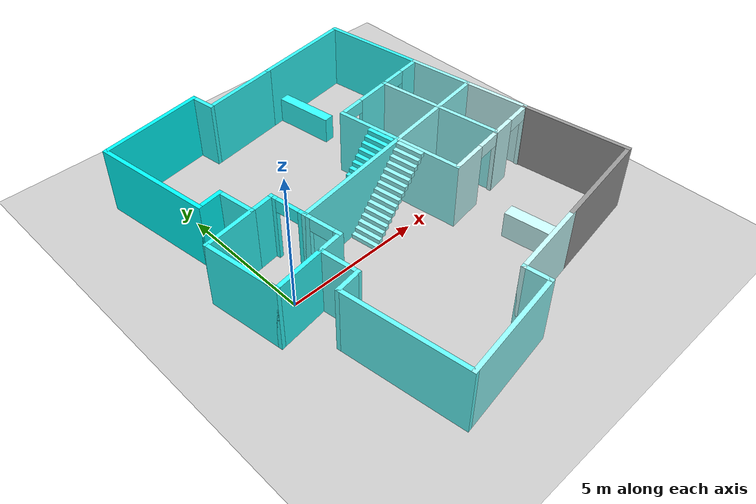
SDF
<sdf version="1.6">
 <world name="default">
  <light name="sun" type="directional">
   <pose>0 0 10 0 -0 0</pose>
   <diffuse>0.8 0.8 0.8 1</diffuse>
   <specular>0.2 0.2 0.2 1</specular>
   <attenuation>
    <range>1000</range>
    <constant>0.9</constant>
    <linear>0.01</linear>
    <quadratic>0.001</quadratic>
   </attenuation>
   <direction>-0.5 0.1 -0.9</direction>
  </light>
  <model name="ground_plane">
   <static>1</static>
   <link name="link">
    <collision name="collision">
     <geometry><plane><normal>0 0 1</normal><size>100 100</size></plane></geometry>
     <surface>
      <contact><collide_bitmask>65535</collide_bitmask></contact>
      <friction><ode><mu>100</mu><mu2>50</mu2></ode></friction>
     </surface>
    </collision>
    <visual name="visual">
     <cast_shadows>0</cast_shadows>
     <geometry><plane><normal>0 0 1</normal><size>100 100</size></plane></geometry>
     <material>
      <script><uri>file://media/materials/scripts/gazebo.material</uri><name>Gazebo/Grey</name></script>
     </material>
    </visual>
   </link>
  </model>
  <gravity>0 0 -9.8</gravity>
  <magnetic_field>6e-06 2.3e-05 -4.2e-05</magnetic_field>
  <atmosphere type="adiabatic"/>
  <physics name="default_physics" default="0" type="ode">
   <max_step_size>0.001</max_step_size>
   <real_time_factor>1</real_time_factor>
   <real_time_update_rate>1000</real_time_update_rate>
  </physics>
  <scene><ambient>0.4 0.4 0.4 1</ambient><background>0.7 0.7 0.7 1</background><shadows>1</shadows></scene>
  <audio><device>default</device></audio>
  <spherical_coordinates>
   <surface_model>EARTH_WGS84</surface_model>
   <latitude_deg>0</latitude_deg>
   <longitude_deg>0</longitude_deg>
   <elevation>0</elevation>
   <heading_deg>0</heading_deg>
  </spherical_coordinates>
  <model name="thermal_two_family">
   <pose>4.24756 1.15233 0 0 0 -1.43406</pose>
   <link name="Stairs_1">
    <visual name="Stairs_1_Visual_0">
     <pose>-0.58975 -0.927848 0.083333 0 -0 -3.14159</pose>
     <geometry><box><size>1 0.167208 0.166667</size></box></geometry>
     <material>
      <script><uri>file://media/materials/scripts/gazebo.material</uri><name>Gazebo/Grey</name></script>
      <ambient>0.196078 1 1 1</ambient>
     </material>
     <meta><layer>0</layer></meta>
    </visual>
    <collision name="Stairs_1_Collision_0">
     <geometry><box><size>1 0.167208 0.166667</size></box></geometry>
     <pose>-0.58975 -0.927848 0.083333 0 -0 -3.14159</pose>
    </collision>
    <visual name="Stairs_1_Visual_1">
     <pose>-0.58975 -0.76064 0.25 0 -0 -3.14159</pose>
     <geometry><box><size>1 0.167208 0.166667</size></box></geometry>
     <material>
      <script><uri>file://media/materials/scripts/gazebo.material</uri><name>Gazebo/Grey</name></script>
      <ambient>0.196078 1 1 1</ambient>
     </material>
     <meta><layer>0</layer></meta>
    </visual>
    <collision name="Stairs_1_Collision_1">
     <geometry><box><size>1 0.167208 0.166667</size></box></geometry>
     <pose>-0.58975 -0.76064 0.25 0 -0 -3.14159</pose>
    </collision>
    <visual name="Stairs_1_Visual_2">
     <pose>-0.58975 -0.593431 0.416667 0 -0 -3.14159</pose>
     <geometry><box><size>1 0.167208 0.166667</size></box></geometry>
     <material>
      <script><uri>file://media/materials/scripts/gazebo.material</uri><name>Gazebo/Grey</name></script>
      <ambient>0.196078 1 1 1</ambient>
     </material>
     <meta><layer>0</layer></meta>
    </visual>
    <collision name="Stairs_1_Collision_2">
     <geometry><box><size>1 0.167208 0.166667</size></box></geometry>
     <pose>-0.58975 -0.593431 0.416667 0 -0 -3.14159</pose>
    </collision>
    <visual name="Stairs_1_Visual_3">
     <pose>-0.58975 -0.426223 0.583333 0 -0 -3.14159</pose>
     <geometry><box><size>1 0.167208 0.166667</size></box></geometry>
     <material>
      <script><uri>file://media/materials/scripts/gazebo.material</uri><name>Gazebo/Grey</name></script>
      <ambient>0.196078 1 1 1</ambient>
     </material>
     <meta><layer>0</layer></meta>
    </visual>
    <collision name="Stairs_1_Collision_3">
     <geometry><box><size>1 0.167208 0.166667</size></box></geometry>
     <pose>-0.58975 -0.426223 0.583333 0 -0 -3.14159</pose>
    </collision>
    <visual name="Stairs_1_Visual_4">
     <pose>-0.58975 -0.259015 0.75 0 -0 -3.14159</pose>
     <geometry><box><size>1 0.167208 0.166667</size></box></geometry>
     <material>
      <script><uri>file://media/materials/scripts/gazebo.material</uri><name>Gazebo/Grey</name></script>
      <ambient>0.196078 1 1 1</ambient>
     </material>
     <meta><layer>0</layer></meta>
    </visual>
    <collision name="Stairs_1_Collision_4">
     <geometry><box><size>1 0.167208 0.166667</size></box></geometry>
     <pose>-0.58975 -0.259015 0.75 0 -0 -3.14159</pose>
    </collision>
    <visual name="Stairs_1_Visual_5">
     <pose>-0.58975 -0.091806 0.916667 0 -0 -3.14159</pose>
     <geometry><box><size>1 0.167208 0.166667</size></box></geometry>
     <material>
      <script><uri>file://media/materials/scripts/gazebo.material</uri><name>Gazebo/Grey</name></script>
      <ambient>0.196078 1 1 1</ambient>
     </material>
     <meta><layer>0</layer></meta>
    </visual>
    <collision name="Stairs_1_Collision_5">
     <geometry><box><size>1 0.167208 0.166667</size></box></geometry>
     <pose>-0.58975 -0.091806 0.916667 0 -0 -3.14159</pose>
    </collision>
    <visual name="Stairs_1_Visual_6">
     <pose>-0.58975 0.075402 1.08333 0 -0 -3.14159</pose>
     <geometry><box><size>1 0.167208 0.166667</size></box></geometry>
     <material>
      <script><uri>file://media/materials/scripts/gazebo.material</uri><name>Gazebo/Grey</name></script>
      <ambient>0.196078 1 1 1</ambient>
     </material>
     <meta><layer>0</layer></meta>
    </visual>
    <collision name="Stairs_1_Collision_6">
     <geometry><box><size>1 0.167208 0.166667</size></box></geometry>
     <pose>-0.58975 0.075402 1.08333 0 -0 -3.14159</pose>
    </collision>
    <visual name="Stairs_1_Visual_7">
     <pose>-0.58975 0.24261 1.25 0 -0 -3.14159</pose>
     <geometry><box><size>1 0.167208 0.166667</size></box></geometry>
     <material>
      <script><uri>file://media/materials/scripts/gazebo.material</uri><name>Gazebo/Grey</name></script>
      <ambient>0.196078 1 1 1</ambient>
     </material>
     <meta><layer>0</layer></meta>
    </visual>
    <collision name="Stairs_1_Collision_7">
     <geometry><box><size>1 0.167208 0.166667</size></box></geometry>
     <pose>-0.58975 0.24261 1.25 0 -0 -3.14159</pose>
    </collision>
    <visual name="Stairs_1_Visual_8">
     <pose>-0.58975 0.409819 1.41667 0 -0 -3.14159</pose>
     <geometry><box><size>1 0.167208 0.166667</size></box></geometry>
     <material>
      <script><uri>file://media/materials/scripts/gazebo.material</uri><name>Gazebo/Grey</name></script>
      <ambient>0.196078 1 1 1</ambient>
     </material>
     <meta><layer>0</layer></meta>
    </visual>
    <collision name="Stairs_1_Collision_8">
     <geometry><box><size>1 0.167208 0.166667</size></box></geometry>
     <pose>-0.58975 0.409819 1.41667 0 -0 -3.14159</pose>
    </collision>
    <visual name="Stairs_1_Visual_9">
     <pose>-0.58975 0.577027 1.58333 0 -0 -3.14159</pose>
     <geometry><box><size>1 0.167208 0.166667</size></box></geometry>
     <material>
      <script><uri>file://media/materials/scripts/gazebo.material</uri><name>Gazebo/Grey</name></script>
      <ambient>0.196078 1 1 1</ambient>
     </material>
     <meta><layer>0</layer></meta>
    </visual>
    <collision name="Stairs_1_Collision_9">
     <geometry><box><size>1 0.167208 0.166667</size></box></geometry>
     <pose>-0.58975 0.577027 1.58333 0 -0 -3.14159</pose>
    </collision>
    <visual name="Stairs_1_Visual_10">
     <pose>-0.58975 0.744235 1.75 0 -0 -3.14159</pose>
     <geometry><box><size>1 0.167208 0.166667</size></box></geometry>
     <material>
      <script><uri>file://media/materials/scripts/gazebo.material</uri><name>Gazebo/Grey</name></script>
      <ambient>0.196078 1 1 1</ambient>
     </material>
     <meta><layer>0</layer></meta>
    </visual>
    <collision name="Stairs_1_Collision_10">
     <geometry><box><size>1 0.167208 0.166667</size></box></geometry>
     <pose>-0.58975 0.744235 1.75 0 -0 -3.14159</pose>
    </collision>
    <visual name="Stairs_1_Visual_11">
     <pose>-0.58975 0.911444 1.91667 0 -0 -3.14159</pose>
     <geometry><box><size>1 0.167208 0.166667</size></box></geometry>
     <material>
      <script><uri>file://media/materials/scripts/gazebo.material</uri><name>Gazebo/Grey</name></script>
      <ambient>0.196078 1 1 1</ambient>
     </material>
     <meta><layer>0</layer></meta>
    </visual>
    <collision name="Stairs_1_Collision_11">
     <geometry><box><size>1 0.167208 0.166667</size></box></geometry>
     <pose>-0.58975 0.911444 1.91667 0 -0 -3.14159</pose>
    </collision>
    <visual name="Stairs_1_Visual_12">
     <pose>-0.58975 1.07865 2.08333 0 -0 -3.14159</pose>
     <geometry><box><size>1 0.167208 0.166667</size></box></geometry>
     <material>
      <script><uri>file://media/materials/scripts/gazebo.material</uri><name>Gazebo/Grey</name></script>
      <ambient>0.196078 1 1 1</ambient>
     </material>
     <meta><layer>0</layer></meta>
    </visual>
    <collision name="Stairs_1_Collision_12">
     <geometry><box><size>1 0.167208 0.166667</size></box></geometry>
     <pose>-0.58975 1.07865 2.08333 0 -0 -3.14159</pose>
    </collision>
    <visual name="Stairs_1_Visual_13">
     <pose>-0.58975 1.24586 2.25 0 -0 -3.14159</pose>
     <geometry><box><size>1 0.167208 0.166667</size></box></geometry>
     <material>
      <script><uri>file://media/materials/scripts/gazebo.material</uri><name>Gazebo/Grey</name></script>
      <ambient>0.196078 1 1 1</ambient>
     </material>
     <meta><layer>0</layer></meta>
    </visual>
    <collision name="Stairs_1_Collision_13">
     <geometry><box><size>1 0.167208 0.166667</size></box></geometry>
     <pose>-0.58975 1.24586 2.25 0 -0 -3.14159</pose>
    </collision>
    <visual name="Stairs_1_Visual_14">
     <pose>-0.58975 1.41307 2.41667 0 -0 -3.14159</pose>
     <geometry><box><size>1 0.167208 0.166667</size></box></geometry>
     <material>
      <script><uri>file://media/materials/scripts/gazebo.material</uri><name>Gazebo/Grey</name></script>
      <ambient>0.196078 1 1 1</ambient>
     </material>
     <meta><layer>0</layer></meta>
    </visual>
    <collision name="Stairs_1_Collision_14">
     <geometry><box><size>1 0.167208 0.166667</size></box></geometry>
     <pose>-0.58975 1.41307 2.41667 0 -0 -3.14159</pose>
    </collision>
   </link>
   <link name="Stairs_2">
    <visual name="Stairs_2_Visual_0">
     <pose>0.593884 -0.927407 0.083333 0 -0 -3.14159</pose>
     <geometry><box><size>1 0.16809 0.166667</size></box></geometry>
     <material>
      <script><uri>file://media/materials/scripts/gazebo.material</uri><name>Gazebo/Grey</name></script>
      <ambient>0.588235 1 1 1</ambient>
     </material>
     <meta><layer>0</layer></meta>
    </visual>
    <collision name="Stairs_2_Collision_0">
     <geometry><box><size>1 0.16809 0.166667</size></box></geometry>
     <pose>0.593884 -0.927407 0.083333 0 -0 -3.14159</pose>
    </collision>
    <visual name="Stairs_2_Visual_1">
     <pose>0.593884 -0.759317 0.25 0 -0 -3.14159</pose>
     <geometry><box><size>1 0.16809 0.166667</size></box></geometry>
     <material>
      <script><uri>file://media/materials/scripts/gazebo.material</uri><name>Gazebo/Grey</name></script>
      <ambient>0.588235 1 1 1</ambient>
     </material>
     <meta><layer>0</layer></meta>
    </visual>
    <collision name="Stairs_2_Collision_1">
     <geometry><box><size>1 0.16809 0.166667</size></box></geometry>
     <pose>0.593884 -0.759317 0.25 0 -0 -3.14159</pose>
    </collision>
    <visual name="Stairs_2_Visual_2">
     <pose>0.593884 -0.591227 0.416667 0 -0 -3.14159</pose>
     <geometry><box><size>1 0.16809 0.166667</size></box></geometry>
     <material>
      <script><uri>file://media/materials/scripts/gazebo.material</uri><name>Gazebo/Grey</name></script>
      <ambient>0.588235 1 1 1</ambient>
     </material>
     <meta><layer>0</layer></meta>
    </visual>
    <collision name="Stairs_2_Collision_2">
     <geometry><box><size>1 0.16809 0.166667</size></box></geometry>
     <pose>0.593884 -0.591227 0.416667 0 -0 -3.14159</pose>
    </collision>
    <visual name="Stairs_2_Visual_3">
     <pose>0.593884 -0.423137 0.583333 0 -0 -3.14159</pose>
     <geometry><box><size>1 0.16809 0.166667</size></box></geometry>
     <material>
      <script><uri>file://media/materials/scripts/gazebo.material</uri><name>Gazebo/Grey</name></script>
      <ambient>0.588235 1 1 1</ambient>
     </material>
     <meta><layer>0</layer></meta>
    </visual>
    <collision name="Stairs_2_Collision_3">
     <geometry><box><size>1 0.16809 0.166667</size></box></geometry>
     <pose>0.593884 -0.423137 0.583333 0 -0 -3.14159</pose>
    </collision>
    <visual name="Stairs_2_Visual_4">
     <pose>0.593884 -0.255047 0.75 0 -0 -3.14159</pose>
     <geometry><box><size>1 0.16809 0.166667</size></box></geometry>
     <material>
      <script><uri>file://media/materials/scripts/gazebo.material</uri><name>Gazebo/Grey</name></script>
      <ambient>0.588235 1 1 1</ambient>
     </material>
     <meta><layer>0</layer></meta>
    </visual>
    <collision name="Stairs_2_Collision_4">
     <geometry><box><size>1 0.16809 0.166667</size></box></geometry>
     <pose>0.593884 -0.255047 0.75 0 -0 -3.14159</pose>
    </collision>
    <visual name="Stairs_2_Visual_5">
     <pose>0.593884 -0.086957 0.916667 0 -0 -3.14159</pose>
     <geometry><box><size>1 0.16809 0.166667</size></box></geometry>
     <material>
      <script><uri>file://media/materials/scripts/gazebo.material</uri><name>Gazebo/Grey</name></script>
      <ambient>0.588235 1 1 1</ambient>
     </material>
     <meta><layer>0</layer></meta>
    </visual>
    <collision name="Stairs_2_Collision_5">
     <geometry><box><size>1 0.16809 0.166667</size></box></geometry>
     <pose>0.593884 -0.086957 0.916667 0 -0 -3.14159</pose>
    </collision>
    <visual name="Stairs_2_Visual_6">
     <pose>0.593884 0.081133 1.08333 0 -0 -3.14159</pose>
     <geometry><box><size>1 0.16809 0.166667</size></box></geometry>
     <material>
      <script><uri>file://media/materials/scripts/gazebo.material</uri><name>Gazebo/Grey</name></script>
      <ambient>0.588235 1 1 1</ambient>
     </material>
     <meta><layer>0</layer></meta>
    </visual>
    <collision name="Stairs_2_Collision_6">
     <geometry><box><size>1 0.16809 0.166667</size></box></geometry>
     <pose>0.593884 0.081133 1.08333 0 -0 -3.14159</pose>
    </collision>
    <visual name="Stairs_2_Visual_7">
     <pose>0.593884 0.249223 1.25 0 -0 -3.14159</pose>
     <geometry><box><size>1 0.16809 0.166667</size></box></geometry>
     <material>
      <script><uri>file://media/materials/scripts/gazebo.material</uri><name>Gazebo/Grey</name></script>
      <ambient>0.588235 1 1 1</ambient>
     </material>
     <meta><layer>0</layer></meta>
    </visual>
    <collision name="Stairs_2_Collision_7">
     <geometry><box><size>1 0.16809 0.166667</size></box></geometry>
     <pose>0.593884 0.249223 1.25 0 -0 -3.14159</pose>
    </collision>
    <visual name="Stairs_2_Visual_8">
     <pose>0.593884 0.417313 1.41667 0 -0 -3.14159</pose>
     <geometry><box><size>1 0.16809 0.166667</size></box></geometry>
     <material>
      <script><uri>file://media/materials/scripts/gazebo.material</uri><name>Gazebo/Grey</name></script>
      <ambient>0.588235 1 1 1</ambient>
     </material>
     <meta><layer>0</layer></meta>
    </visual>
    <collision name="Stairs_2_Collision_8">
     <geometry><box><size>1 0.16809 0.166667</size></box></geometry>
     <pose>0.593884 0.417313 1.41667 0 -0 -3.14159</pose>
    </collision>
    <visual name="Stairs_2_Visual_9">
     <pose>0.593884 0.585403 1.58333 0 -0 -3.14159</pose>
     <geometry><box><size>1 0.16809 0.166667</size></box></geometry>
     <material>
      <script><uri>file://media/materials/scripts/gazebo.material</uri><name>Gazebo/Grey</name></script>
      <ambient>0.588235 1 1 1</ambient>
     </material>
     <meta><layer>0</layer></meta>
    </visual>
    <collision name="Stairs_2_Collision_9">
     <geometry><box><size>1 0.16809 0.166667</size></box></geometry>
     <pose>0.593884 0.585403 1.58333 0 -0 -3.14159</pose>
    </collision>
    <visual name="Stairs_2_Visual_10">
     <pose>0.593884 0.753493 1.75 0 -0 -3.14159</pose>
     <geometry><box><size>1 0.16809 0.166667</size></box></geometry>
     <material>
      <script><uri>file://media/materials/scripts/gazebo.material</uri><name>Gazebo/Grey</name></script>
      <ambient>0.588235 1 1 1</ambient>
     </material>
     <meta><layer>0</layer></meta>
    </visual>
    <collision name="Stairs_2_Collision_10">
     <geometry><box><size>1 0.16809 0.166667</size></box></geometry>
     <pose>0.593884 0.753493 1.75 0 -0 -3.14159</pose>
    </collision>
    <visual name="Stairs_2_Visual_11">
     <pose>0.593884 0.921583 1.91667 0 -0 -3.14159</pose>
     <geometry><box><size>1 0.16809 0.166667</size></box></geometry>
     <material>
      <script><uri>file://media/materials/scripts/gazebo.material</uri><name>Gazebo/Grey</name></script>
      <ambient>0.588235 1 1 1</ambient>
     </material>
     <meta><layer>0</layer></meta>
    </visual>
    <collision name="Stairs_2_Collision_11">
     <geometry><box><size>1 0.16809 0.166667</size></box></geometry>
     <pose>0.593884 0.921583 1.91667 0 -0 -3.14159</pose>
    </collision>
    <visual name="Stairs_2_Visual_12">
     <pose>0.593884 1.08967 2.08333 0 -0 -3.14159</pose>
     <geometry><box><size>1 0.16809 0.166667</size></box></geometry>
     <material>
      <script><uri>file://media/materials/scripts/gazebo.material</uri><name>Gazebo/Grey</name></script>
      <ambient>0.588235 1 1 1</ambient>
     </material>
     <meta><layer>0</layer></meta>
    </visual>
    <collision name="Stairs_2_Collision_12">
     <geometry><box><size>1 0.16809 0.166667</size></box></geometry>
     <pose>0.593884 1.08967 2.08333 0 -0 -3.14159</pose>
    </collision>
    <visual name="Stairs_2_Visual_13">
     <pose>0.593884 1.25776 2.25 0 -0 -3.14159</pose>
     <geometry><box><size>1 0.16809 0.166667</size></box></geometry>
     <material>
      <script><uri>file://media/materials/scripts/gazebo.material</uri><name>Gazebo/Grey</name></script>
      <ambient>0.588235 1 1 1</ambient>
     </material>
     <meta><layer>0</layer></meta>
    </visual>
    <collision name="Stairs_2_Collision_13">
     <geometry><box><size>1 0.16809 0.166667</size></box></geometry>
     <pose>0.593884 1.25776 2.25 0 -0 -3.14159</pose>
    </collision>
    <visual name="Stairs_2_Visual_14">
     <pose>0.593884 1.42585 2.41667 0 -0 -3.14159</pose>
     <geometry><box><size>1 0.16809 0.166667</size></box></geometry>
     <material>
      <script><uri>file://media/materials/scripts/gazebo.material</uri><name>Gazebo/Grey</name></script>
      <ambient>0.588235 1 1 1</ambient>
     </material>
     <meta><layer>0</layer></meta>
    </visual>
    <collision name="Stairs_2_Collision_14">
     <geometry><box><size>1 0.16809 0.166667</size></box></geometry>
     <pose>0.593884 1.42585 2.41667 0 -0 -3.14159</pose>
    </collision>
   </link>
   <link name="Wall_10">
    <collision name="Wall_10_Collision">
     <geometry><box><size>4 0.15 2.5</size></box></geometry>
     <pose>0 0 1.25 0 -0 0</pose>
    </collision>
    <visual name="Wall_10_Visual">
     <pose>0 0 1.25 0 -0 0</pose>
     <geometry><box><size>4 0.15 2.5</size></box></geometry>
     <material>
      <script><uri>file://media/materials/scripts/gazebo.material</uri><name>Gazebo/Grey</name></script>
      <ambient>1 1 1 1</ambient>
     </material>
     <meta><layer>0</layer></meta>
    </visual>
    <pose>4.275 5.775 0 0 -0 0</pose>
   </link>
   <link name="Wall_12">
    <collision name="Wall_12_Collision">
     <geometry><box><size>4 0.15 2.5</size></box></geometry>
     <pose>0 0 1.25 0 -0 0</pose>
    </collision>
    <visual name="Wall_12_Visual">
     <pose>0 0 1.25 0 -0 0</pose>
     <geometry><box><size>4 0.15 2.5</size></box></geometry>
     <material>
      <script><uri>file://media/materials/scripts/gazebo.material</uri><name>Gazebo/Grey</name></script>
      <ambient>1 1 1 1</ambient>
     </material>
     <meta><layer>0</layer></meta>
    </visual>
    <pose>6.2 3.85 0 0 -0 -1.5708</pose>
   </link>
   <link name="Wall_14">
    <collision name="Wall_14_Collision">
     <geometry><box><size>2 0.15 2.5</size></box></geometry>
     <pose>0 0 1.25 0 -0 0</pose>
    </collision>
    <visual name="Wall_14_Visual">
     <pose>0 0 1.25 0 -0 0</pose>
     <geometry><box><size>2 0.15 2.5</size></box></geometry>
     <material>
      <script><uri>file://media/materials/scripts/gazebo.material</uri><name>Gazebo/Grey</name></script>
      <ambient>0.588235 1 1 1</ambient>
     </material>
     <meta><layer>0</layer></meta>
    </visual>
    <pose>-0 4.85 0 0 -0 -1.5708</pose>
   </link>
   <link name="Wall_15">
    <collision name="Wall_15_Collision">
     <geometry><box><size>2.5 0.15 2.5</size></box></geometry>
     <pose>0 0 1.25 0 -0 0</pose>
    </collision>
    <visual name="Wall_15_Visual">
     <pose>0 0 1.25 0 -0 0</pose>
     <geometry><box><size>2.5 0.15 2.5</size></box></geometry>
     <material>
      <script><uri>file://media/materials/scripts/gazebo.material</uri><name>Gazebo/Grey</name></script>
      <ambient>0.588235 1 1 1</ambient>
     </material>
     <meta><layer>0</layer></meta>
    </visual>
    <pose>1.175 3.925 0 0 -0 0</pose>
   </link>
   <link name="Wall_16">
    <pose>2.35 4.85 0 0 -0 1.5708</pose>
    <visual name="Wall_16_Visual_0">
     <pose>-0.541074 0 1.25 0 -0 0</pose>
     <geometry><box><size>0.917852 0.15 2.5</size></box></geometry>
     <material>
      <script><uri>file://media/materials/scripts/gazebo.material</uri><name>Gazebo/Grey</name></script>
      <ambient>0.784314 1 1 1</ambient>
     </material>
     <meta><layer>0</layer></meta>
    </visual>
    <collision name="Wall_16_Collision_0">
     <geometry><box><size>0.917852 0.15 2.5</size></box></geometry>
     <pose>-0.541074 0 1.25 0 -0 0</pose>
    </collision>
    <visual name="Wall_16_Visual_1">
     <pose>0.908926 0 1.25 0 -0 0</pose>
     <geometry><box><size>0.182148 0.15 2.5</size></box></geometry>
     <material>
      <script><uri>file://media/materials/scripts/gazebo.material</uri><name>Gazebo/Grey</name></script>
      <ambient>0.784314 1 1 1</ambient>
     </material>
     <meta><layer>0</layer></meta>
    </visual>
    <collision name="Wall_16_Collision_1">
     <geometry><box><size>0.182148 0.15 2.5</size></box></geometry>
     <pose>0.908926 0 1.25 0 -0 0</pose>
    </collision>
    <visual name="Wall_16_Visual_2">
     <pose>0.367852 0 2.25 0 -0 0</pose>
     <geometry><box><size>0.9 0.15 0.5</size></box></geometry>
     <material>
      <script><uri>file://media/materials/scripts/gazebo.material</uri><name>Gazebo/Grey</name></script>
      <ambient>0.784314 1 1 1</ambient>
     </material>
     <meta><layer>0</layer></meta>
    </visual>
    <collision name="Wall_16_Collision_2">
     <geometry><box><size>0.9 0.15 0.5</size></box></geometry>
     <pose>0.367852 0 2.25 0 -0 0</pose>
    </collision>
   </link>
   <link name="Wall_18">
    <collision name="Wall_18_Collision">
     <geometry><box><size>2.5 0.15 2.5</size></box></geometry>
     <pose>0 0 1.25 0 -0 0</pose>
    </collision>
    <visual name="Wall_18_Visual">
     <pose>0 0 1.25 0 -0 0</pose>
     <geometry><box><size>2.5 0.15 2.5</size></box></geometry>
     <material>
      <script><uri>file://media/materials/scripts/gazebo.material</uri><name>Gazebo/Grey</name></script>
      <ambient>0.588235 1 1 1</ambient>
     </material>
     <meta><layer>0</layer></meta>
    </visual>
    <pose>-0 2.75 0 0 -0 -1.5708</pose>
   </link>
   <link name="Wall_19">
    <collision name="Wall_19_Collision">
     <geometry><box><size>2.5 0.15 2.5</size></box></geometry>
     <pose>0 0 1.25 0 -0 0</pose>
    </collision>
    <visual name="Wall_19_Visual">
     <pose>0 0 1.25 0 -0 0</pose>
     <geometry><box><size>2.5 0.15 2.5</size></box></geometry>
     <material>
      <script><uri>file://media/materials/scripts/gazebo.material</uri><name>Gazebo/Grey</name></script>
      <ambient>0.588235 1 1 1</ambient>
     </material>
     <meta><layer>0</layer></meta>
    </visual>
    <pose>1.175 1.575 0 0 -0 0</pose>
   </link>
   <link name="Wall_20">
    <pose>2.35 2.75 0 0 -0 1.5708</pose>
    <visual name="Wall_20_Visual_0">
     <pose>-0.541824 0 1.25 0 -0 0</pose>
     <geometry><box><size>1.41635 0.15 2.5</size></box></geometry>
     <material>
      <script><uri>file://media/materials/scripts/gazebo.material</uri><name>Gazebo/Grey</name></script>
      <ambient>0.784314 1 1 1</ambient>
     </material>
     <meta><layer>0</layer></meta>
    </visual>
    <collision name="Wall_20_Collision_0">
     <geometry><box><size>1.41635 0.15 2.5</size></box></geometry>
     <pose>-0.541824 0 1.25 0 -0 0</pose>
    </collision>
    <visual name="Wall_20_Visual_1">
     <pose>1.15818 0 1.25 0 -0 0</pose>
     <geometry><box><size>0.183648 0.15 2.5</size></box></geometry>
     <material>
      <script><uri>file://media/materials/scripts/gazebo.material</uri><name>Gazebo/Grey</name></script>
      <ambient>0.784314 1 1 1</ambient>
     </material>
     <meta><layer>0</layer></meta>
    </visual>
    <collision name="Wall_20_Collision_1">
     <geometry><box><size>0.183648 0.15 2.5</size></box></geometry>
     <pose>1.15818 0 1.25 0 -0 0</pose>
    </collision>
    <visual name="Wall_20_Visual_2">
     <pose>0.616352 0 2.25 0 -0 0</pose>
     <geometry><box><size>0.9 0.15 0.5</size></box></geometry>
     <material>
      <script><uri>file://media/materials/scripts/gazebo.material</uri><name>Gazebo/Grey</name></script>
      <ambient>0.784314 1 1 1</ambient>
     </material>
     <meta><layer>0</layer></meta>
    </visual>
    <collision name="Wall_20_Collision_2">
     <geometry><box><size>0.9 0.15 0.5</size></box></geometry>
     <pose>0.616352 0 2.25 0 -0 0</pose>
    </collision>
   </link>
   <link name="Wall_22">
    <collision name="Wall_22_Collision">
     <geometry><box><size>3 0.15 2.5</size></box></geometry>
     <pose>0 0 1.25 0 -0 0</pose>
    </collision>
    <visual name="Wall_22_Visual">
     <pose>0 0 1.25 0 -0 0</pose>
     <geometry><box><size>3 0.15 2.5</size></box></geometry>
     <material>
      <script><uri>file://media/materials/scripts/gazebo.material</uri><name>Gazebo/Grey</name></script>
      <ambient>0.784314 1 1 1</ambient>
     </material>
     <meta><layer>0</layer></meta>
    </visual>
    <pose>6.2 0.5 0 0 -0 -1.5708</pose>
   </link>
   <link name="Wall_24">
    <collision name="Wall_24_Collision">
     <geometry><box><size>1 0.15 2.5</size></box></geometry>
     <pose>0 0 1.25 0 -0 0</pose>
    </collision>
    <visual name="Wall_24_Visual">
     <pose>0 0 1.25 0 -0 0</pose>
     <geometry><box><size>1 0.15 2.5</size></box></geometry>
     <material>
      <script><uri>file://media/materials/scripts/gazebo.material</uri><name>Gazebo/Grey</name></script>
      <ambient>0.588235 1 1 1</ambient>
     </material>
     <meta><layer>0</layer></meta>
    </visual>
    <pose>6.625 -0.925 0 0 -0 0</pose>
   </link>
   <link name="Wall_32">
    <collision name="Wall_32_Collision">
     <geometry><box><size>2.5 0.15 2.5</size></box></geometry>
     <pose>0 0 1.25 0 -0 0</pose>
    </collision>
    <visual name="Wall_32_Visual">
     <pose>0 0 1.25 0 -0 0</pose>
     <geometry><box><size>2.5 0.15 2.5</size></box></geometry>
     <material>
      <script><uri>file://media/materials/scripts/gazebo.material</uri><name>Gazebo/Grey</name></script>
      <ambient>0.588235 1 1 1</ambient>
     </material>
     <meta><layer>0</layer></meta>
    </visual>
    <pose>-1.175 5.775 0 0 -0 3.14159</pose>
   </link>
   <link name="Wall_33">
    <collision name="Wall_33_Collision">
     <geometry><box><size>4 0.15 2.5</size></box></geometry>
     <pose>0 0 1.25 0 -0 0</pose>
    </collision>
    <visual name="Wall_33_Visual">
     <pose>0 0 1.25 0 -0 0</pose>
     <geometry><box><size>4 0.15 2.5</size></box></geometry>
     <material>
      <script><uri>file://media/materials/scripts/gazebo.material</uri><name>Gazebo/Grey</name></script>
      <ambient>0.196078 1 1 1</ambient>
     </material>
     <meta><layer>0</layer></meta>
    </visual>
    <pose>-4.275 5.775 0 0 -0 3.14159</pose>
   </link>
   <link name="Wall_34">
    <collision name="Wall_34_Collision">
     <geometry><box><size>4 0.15 2.5</size></box></geometry>
     <pose>0 0 1.25 0 -0 0</pose>
    </collision>
    <visual name="Wall_34_Visual">
     <pose>0 0 1.25 0 -0 0</pose>
     <geometry><box><size>4 0.15 2.5</size></box></geometry>
     <material>
      <script><uri>file://media/materials/scripts/gazebo.material</uri><name>Gazebo/Grey</name></script>
      <ambient>0.196078 1 1 1</ambient>
     </material>
     <meta><layer>0</layer></meta>
    </visual>
    <pose>-6.2 3.85 0 0 -0 -1.5708</pose>
   </link>
   <link name="Wall_35">
    <collision name="Wall_35_Collision">
     <geometry><box><size>3 0.15 2.5</size></box></geometry>
     <pose>0 0 1.25 0 -0 0</pose>
    </collision>
    <visual name="Wall_35_Visual">
     <pose>0 0 1.25 0 -0 0</pose>
     <geometry><box><size>3 0.15 2.5</size></box></geometry>
     <material>
      <script><uri>file://media/materials/scripts/gazebo.material</uri><name>Gazebo/Grey</name></script>
      <ambient>0.196078 1 1 1</ambient>
     </material>
     <meta><layer>0</layer></meta>
    </visual>
    <pose>-6.2 0.5 0 0 -0 -1.5708</pose>
   </link>
   <link name="Wall_36">
    <collision name="Wall_36_Collision">
     <geometry><box><size>1 0.15 2.5</size></box></geometry>
     <pose>0 0 1.25 0 -0 0</pose>
    </collision>
    <visual name="Wall_36_Visual">
     <pose>0 0 1.25 0 -0 0</pose>
     <geometry><box><size>1 0.15 2.5</size></box></geometry>
     <material>
      <script><uri>file://media/materials/scripts/gazebo.material</uri><name>Gazebo/Grey</name></script>
      <ambient>0.196078 1 1 1</ambient>
     </material>
     <meta><layer>0</layer></meta>
    </visual>
    <pose>-6.625 -0.925 0 0 -0 3.14159</pose>
   </link>
   <link name="Wall_38">
    <collision name="Wall_38_Collision">
     <geometry><box><size>2.5 0.15 2.5</size></box></geometry>
     <pose>0 0 1.25 0 -0 0</pose>
    </collision>
    <visual name="Wall_38_Visual">
     <pose>0 0 1.25 0 -0 0</pose>
     <geometry><box><size>2.5 0.15 2.5</size></box></geometry>
     <material>
      <script><uri>file://media/materials/scripts/gazebo.material</uri><name>Gazebo/Grey</name></script>
      <ambient>0.588235 1 1 1</ambient>
     </material>
     <meta><layer>0</layer></meta>
    </visual>
    <pose>-1.175 3.925 0 0 -0 3.14159</pose>
   </link>
   <link name="Wall_39">
    <pose>-2.35 4.85 0 0 -0 1.5708</pose>
    <visual name="Wall_39_Visual_0">
     <pose>-0.914824 0 1.25 0 -0 0</pose>
     <geometry><box><size>0.170352 0.15 2.5</size></box></geometry>
     <material>
      <script><uri>file://media/materials/scripts/gazebo.material</uri><name>Gazebo/Grey</name></script>
      <ambient>0.392157 1 1 1</ambient>
     </material>
     <meta><layer>0</layer></meta>
    </visual>
    <collision name="Wall_39_Collision_0">
     <geometry><box><size>0.170352 0.15 2.5</size></box></geometry>
     <pose>-0.914824 0 1.25 0 -0 0</pose>
    </collision>
    <visual name="Wall_39_Visual_1">
     <pose>0.535176 0 1.25 0 -0 0</pose>
     <geometry><box><size>0.929648 0.15 2.5</size></box></geometry>
     <material>
      <script><uri>file://media/materials/scripts/gazebo.material</uri><name>Gazebo/Grey</name></script>
      <ambient>0.392157 1 1 1</ambient>
     </material>
     <meta><layer>0</layer></meta>
    </visual>
    <collision name="Wall_39_Collision_1">
     <geometry><box><size>0.929648 0.15 2.5</size></box></geometry>
     <pose>0.535176 0 1.25 0 -0 0</pose>
    </collision>
    <visual name="Wall_39_Visual_2">
     <pose>-0.379648 0 2.25 0 -0 0</pose>
     <geometry><box><size>0.9 0.15 0.5</size></box></geometry>
     <material>
      <script><uri>file://media/materials/scripts/gazebo.material</uri><name>Gazebo/Grey</name></script>
      <ambient>0.392157 1 1 1</ambient>
     </material>
     <meta><layer>0</layer></meta>
    </visual>
    <collision name="Wall_39_Collision_2">
     <geometry><box><size>0.9 0.15 0.5</size></box></geometry>
     <pose>-0.379648 0 2.25 0 -0 0</pose>
    </collision>
   </link>
   <link name="Wall_41">
    <pose>-2.35 2.75 0 0 -0 -1.5708</pose>
    <visual name="Wall_41_Visual_0">
     <pose>-0.530769 0 1.25 0 -0 0</pose>
     <geometry><box><size>1.43846 0.15 2.5</size></box></geometry>
     <material>
      <script><uri>file://media/materials/scripts/gazebo.material</uri><name>Gazebo/Grey</name></script>
      <ambient>0.392157 1 1 1</ambient>
     </material>
     <meta><layer>0</layer></meta>
    </visual>
    <collision name="Wall_41_Collision_0">
     <geometry><box><size>1.43846 0.15 2.5</size></box></geometry>
     <pose>-0.530769 0 1.25 0 -0 0</pose>
    </collision>
    <visual name="Wall_41_Visual_1">
     <pose>1.16923 0 1.25 0 -0 0</pose>
     <geometry><box><size>0.161538 0.15 2.5</size></box></geometry>
     <material>
      <script><uri>file://media/materials/scripts/gazebo.material</uri><name>Gazebo/Grey</name></script>
      <ambient>0.392157 1 1 1</ambient>
     </material>
     <meta><layer>0</layer></meta>
    </visual>
    <collision name="Wall_41_Collision_1">
     <geometry><box><size>0.161538 0.15 2.5</size></box></geometry>
     <pose>1.16923 0 1.25 0 -0 0</pose>
    </collision>
    <visual name="Wall_41_Visual_2">
     <pose>0.638462 0 2.25 0 -0 0</pose>
     <geometry><box><size>0.9 0.15 0.5</size></box></geometry>
     <material>
      <script><uri>file://media/materials/scripts/gazebo.material</uri><name>Gazebo/Grey</name></script>
      <ambient>0.392157 1 1 1</ambient>
     </material>
     <meta><layer>0</layer></meta>
    </visual>
    <collision name="Wall_41_Collision_2">
     <geometry><box><size>0.9 0.15 0.5</size></box></geometry>
     <pose>0.638462 0 2.25 0 -0 0</pose>
    </collision>
   </link>
   <link name="Wall_42">
    <collision name="Wall_42_Collision">
     <geometry><box><size>2.5 0.15 2.5</size></box></geometry>
     <pose>0 0 1.25 0 -0 0</pose>
    </collision>
    <visual name="Wall_42_Visual">
     <pose>0 0 1.25 0 -0 0</pose>
     <geometry><box><size>2.5 0.15 2.5</size></box></geometry>
     <material>
      <script><uri>file://media/materials/scripts/gazebo.material</uri><name>Gazebo/Grey</name></script>
      <ambient>0.392157 1 1 1</ambient>
     </material>
     <meta><layer>0</layer></meta>
    </visual>
    <pose>-1.175 1.575 0 0 -0 0</pose>
   </link>
   <link name="Wall_44">
    <collision name="Wall_44_Collision">
     <geometry><box><size>4 0.15 2.5</size></box></geometry>
     <pose>0 0 1.25 0 -0 0</pose>
    </collision>
    <visual name="Wall_44_Visual">
     <pose>0 0 1.25 0 -0 0</pose>
     <geometry><box><size>4 0.15 2.5</size></box></geometry>
     <material>
      <script><uri>file://media/materials/scripts/gazebo.material</uri><name>Gazebo/Grey</name></script>
      <ambient>0 1 1 1</ambient>
     </material>
     <meta><layer>0</layer></meta>
    </visual>
    <pose>-7.05 -2.85 0 0 -0 -1.5708</pose>
   </link>
   <link name="Wall_48">
    <collision name="Wall_48_Collision">
     <geometry><box><size>4 0.15 2.5</size></box></geometry>
     <pose>0 0 1.25 0 -0 0</pose>
    </collision>
    <visual name="Wall_48_Visual">
     <pose>0 0 1.25 0 -0 0</pose>
     <geometry><box><size>4 0.15 2.5</size></box></geometry>
     <material>
      <script><uri>file://media/materials/scripts/gazebo.material</uri><name>Gazebo/Grey</name></script>
      <ambient>0.588235 1 1 1</ambient>
     </material>
     <meta><layer>0</layer></meta>
    </visual>
    <pose>7.05 -2.85 0 0 -0 -1.5708</pose>
   </link>
   <link name="Wall_55">
    <collision name="Wall_55_Collision">
     <geometry><box><size>2 0.15 2.5</size></box></geometry>
     <pose>0 0 1.25 0 -0 0</pose>
    </collision>
    <visual name="Wall_55_Visual">
     <pose>0 0 1.25 0 -0 0</pose>
     <geometry><box><size>2 0.15 2.5</size></box></geometry>
     <material>
      <script><uri>file://media/materials/scripts/gazebo.material</uri><name>Gazebo/Grey</name></script>
      <ambient>0.196078 1 1 1</ambient>
     </material>
     <meta><layer>0</layer></meta>
    </visual>
    <pose>1.35 -4.85 0 0 -0 -1.5708</pose>
   </link>
   <link name="Wall_58">
    <collision name="Wall_58_Collision">
     <geometry><box><size>2 0.15 2.5</size></box></geometry>
     <pose>0 0 1.25 0 -0 0</pose>
    </collision>
    <visual name="Wall_58_Visual">
     <pose>0 0 1.25 0 -0 0</pose>
     <geometry><box><size>2 0.15 2.5</size></box></geometry>
     <material>
      <script><uri>file://media/materials/scripts/gazebo.material</uri><name>Gazebo/Grey</name></script>
      <ambient>0.196078 1 1 1</ambient>
     </material>
     <meta><layer>0</layer></meta>
    </visual>
    <pose>-1.35 -4.85 0 0 -0 -1.5708</pose>
   </link>
   <link name="Wall_59">
    <collision name="Wall_59_Collision">
     <geometry><box><size>2.85 0.15 2.5</size></box></geometry>
     <pose>0 0 1.25 0 -0 0</pose>
    </collision>
    <visual name="Wall_59_Visual">
     <pose>0 0 1.25 0 -0 0</pose>
     <geometry><box><size>2.85 0.15 2.5</size></box></geometry>
     <material>
      <script><uri>file://media/materials/scripts/gazebo.material</uri><name>Gazebo/Grey</name></script>
      <ambient>0.196078 1 1 1</ambient>
     </material>
     <meta><layer>0</layer></meta>
    </visual>
    <pose>-0 -5.775 0 0 -0 0</pose>
   </link>
   <link name="Wall_68">
    <collision name="Wall_68_Collision">
     <geometry><box><size>1 0.15 2.5</size></box></geometry>
     <pose>0 0 1.25 0 -0 0</pose>
    </collision>
    <visual name="Wall_68_Visual">
     <pose>0 0 1.25 0 -0 0</pose>
     <geometry><box><size>1 0.15 2.5</size></box></geometry>
     <material>
      <script><uri>file://media/materials/scripts/gazebo.material</uri><name>Gazebo/Grey</name></script>
      <ambient>0.196078 1 1 1</ambient>
     </material>
     <meta><layer>0</layer></meta>
    </visual>
    <pose>-1.35 -3.5 0 0 -0 1.5708</pose>
   </link>
   <link name="Wall_69">
    <pose>-0.675 -3.075 0 0 -0 0</pose>
    <visual name="Wall_69_Visual_0">
     <pose>-0.601242 0 1.25 0 -0 0</pose>
     <geometry><box><size>0.297515 0.15 2.5</size></box></geometry>
     <material>
      <script><uri>file://media/materials/scripts/gazebo.material</uri><name>Gazebo/Grey</name></script>
      <ambient>0.196078 1 1 1</ambient>
     </material>
     <meta><layer>0</layer></meta>
    </visual>
    <collision name="Wall_69_Collision_0">
     <geometry><box><size>0.297515 0.15 2.5</size></box></geometry>
     <pose>-0.601242 0 1.25 0 -0 0</pose>
    </collision>
    <visual name="Wall_69_Visual_1">
     <pose>0.598758 0 1.25 0 -0 0</pose>
     <geometry><box><size>0.302485 0.15 2.5</size></box></geometry>
     <material>
      <script><uri>file://media/materials/scripts/gazebo.material</uri><name>Gazebo/Grey</name></script>
      <ambient>0.196078 1 1 1</ambient>
     </material>
     <meta><layer>0</layer></meta>
    </visual>
    <collision name="Wall_69_Collision_1">
     <geometry><box><size>0.302485 0.15 2.5</size></box></geometry>
     <pose>0.598758 0 1.25 0 -0 0</pose>
    </collision>
    <visual name="Wall_69_Visual_2">
     <pose>-0.002485 0 2.25 0 -0 0</pose>
     <geometry><box><size>0.9 0.15 0.5</size></box></geometry>
     <material>
      <script><uri>file://media/materials/scripts/gazebo.material</uri><name>Gazebo/Grey</name></script>
      <ambient>0.196078 1 1 1</ambient>
     </material>
     <meta><layer>0</layer></meta>
    </visual>
    <collision name="Wall_69_Collision_2">
     <geometry><box><size>0.9 0.15 0.5</size></box></geometry>
     <pose>-0.002485 0 2.25 0 -0 0</pose>
    </collision>
   </link>
   <link name="Wall_70">
    <pose>0.675 -3.075 0 0 -0 0</pose>
    <visual name="Wall_70_Visual_0">
     <pose>-0.593165 0 1.25 0 -0 0</pose>
     <geometry><box><size>0.31367 0.15 2.5</size></box></geometry>
     <material>
      <script><uri>file://media/materials/scripts/gazebo.material</uri><name>Gazebo/Grey</name></script>
      <ambient>0.392157 1 1 1</ambient>
     </material>
     <meta><layer>0</layer></meta>
    </visual>
    <collision name="Wall_70_Collision_0">
     <geometry><box><size>0.31367 0.15 2.5</size></box></geometry>
     <pose>-0.593165 0 1.25 0 -0 0</pose>
    </collision>
    <visual name="Wall_70_Visual_1">
     <pose>0.606835 0 1.25 0 -0 0</pose>
     <geometry><box><size>0.28633 0.15 2.5</size></box></geometry>
     <material>
      <script><uri>file://media/materials/scripts/gazebo.material</uri><name>Gazebo/Grey</name></script>
      <ambient>0.392157 1 1 1</ambient>
     </material>
     <meta><layer>0</layer></meta>
    </visual>
    <collision name="Wall_70_Collision_1">
     <geometry><box><size>0.28633 0.15 2.5</size></box></geometry>
     <pose>0.606835 0 1.25 0 -0 0</pose>
    </collision>
    <visual name="Wall_70_Visual_2">
     <pose>0.01367 0 2.25 0 -0 0</pose>
     <geometry><box><size>0.9 0.15 0.5</size></box></geometry>
     <material>
      <script><uri>file://media/materials/scripts/gazebo.material</uri><name>Gazebo/Grey</name></script>
      <ambient>0.392157 1 1 1</ambient>
     </material>
     <meta><layer>0</layer></meta>
    </visual>
    <collision name="Wall_70_Collision_2">
     <geometry><box><size>0.9 0.15 0.5</size></box></geometry>
     <pose>0.01367 0 2.25 0 -0 0</pose>
    </collision>
   </link>
   <link name="Wall_71">
    <collision name="Wall_71_Collision">
     <geometry><box><size>1 0.15 2.5</size></box></geometry>
     <pose>0 0 1.25 0 -0 0</pose>
    </collision>
    <visual name="Wall_71_Visual">
     <pose>0 0 1.25 0 -0 0</pose>
     <geometry><box><size>1 0.15 2.5</size></box></geometry>
     <material>
      <script><uri>file://media/materials/scripts/gazebo.material</uri><name>Gazebo/Grey</name></script>
      <ambient>0.392157 1 1 1</ambient>
     </material>
     <meta><layer>0</layer></meta>
    </visual>
    <pose>1.35 -3.5 0 0 -0 -1.5708</pose>
   </link>
   <link name="Wall_73">
    <collision name="Wall_73_Collision">
     <geometry><box><size>4.8 0.15 2.5</size></box></geometry>
     <pose>0 0 1.25 0 -0 0</pose>
    </collision>
    <visual name="Wall_73_Visual">
     <pose>0 0 1.25 0 -0 0</pose>
     <geometry><box><size>4.8 0.15 2.5</size></box></geometry>
     <material>
      <script><uri>file://media/materials/scripts/gazebo.material</uri><name>Gazebo/Grey</name></script>
      <ambient>0.392157 1 1 1</ambient>
     </material>
     <meta><layer>0</layer></meta>
    </visual>
    <pose>-0 -0.75 0 0 -0 -1.5708</pose>
   </link>
   <link name="Wall_75">
    <collision name="Wall_75_Collision">
     <geometry><box><size>4.5 0.15 2.5</size></box></geometry>
     <pose>0 0 1.25 0 -0 0</pose>
    </collision>
    <visual name="Wall_75_Visual">
     <pose>0 0 1.25 0 -0 0</pose>
     <geometry><box><size>4.5 0.15 2.5</size></box></geometry>
     <material>
      <script><uri>file://media/materials/scripts/gazebo.material</uri><name>Gazebo/Grey</name></script>
      <ambient>0 1 1 1</ambient>
     </material>
     <meta><layer>0</layer></meta>
    </visual>
    <pose>-4.875 -4.775 0 0 -0 0</pose>
   </link>
   <link name="Wall_76">
    <collision name="Wall_76_Collision">
     <geometry><box><size>1 0.15 2.5</size></box></geometry>
     <pose>0 0 1.25 0 -0 0</pose>
    </collision>
    <visual name="Wall_76_Visual">
     <pose>0 0 1.25 0 -0 0</pose>
     <geometry><box><size>1 0.15 2.5</size></box></geometry>
     <material>
      <script><uri>file://media/materials/scripts/gazebo.material</uri><name>Gazebo/Grey</name></script>
      <ambient>0 1 1 1</ambient>
     </material>
     <meta><layer>0</layer></meta>
    </visual>
    <pose>-2.7 -4.35 0 0 -0 1.5708</pose>
   </link>
   <link name="Wall_77">
    <collision name="Wall_77_Collision">
     <geometry><box><size>1.5 0.15 2.5</size></box></geometry>
     <pose>0 0 1.25 0 -0 0</pose>
    </collision>
    <visual name="Wall_77_Visual">
     <pose>0 0 1.25 0 -0 0</pose>
     <geometry><box><size>1.5 0.15 2.5</size></box></geometry>
     <material>
      <script><uri>file://media/materials/scripts/gazebo.material</uri><name>Gazebo/Grey</name></script>
      <ambient>0.196078 1 1 1</ambient>
     </material>
     <meta><layer>0</layer></meta>
    </visual>
    <pose>-2.025 -3.925 0 0 -0 0</pose>
   </link>
   <link name="Wall_79">
    <collision name="Wall_79_Collision">
     <geometry><box><size>4.5 0.15 2.5</size></box></geometry>
     <pose>0 0 1.25 0 -0 0</pose>
    </collision>
    <visual name="Wall_79_Visual">
     <pose>0 0 1.25 0 -0 0</pose>
     <geometry><box><size>4.5 0.15 2.5</size></box></geometry>
     <material>
      <script><uri>file://media/materials/scripts/gazebo.material</uri><name>Gazebo/Grey</name></script>
      <ambient>0.392157 1 1 1</ambient>
     </material>
     <meta><layer>0</layer></meta>
    </visual>
    <pose>4.875 -4.775 0 0 -0 3.14159</pose>
   </link>
   <link name="Wall_80">
    <collision name="Wall_80_Collision">
     <geometry><box><size>1 0.15 2.5</size></box></geometry>
     <pose>0 0 1.25 0 -0 0</pose>
    </collision>
    <visual name="Wall_80_Visual">
     <pose>0 0 1.25 0 -0 0</pose>
     <geometry><box><size>1 0.15 2.5</size></box></geometry>
     <material>
      <script><uri>file://media/materials/scripts/gazebo.material</uri><name>Gazebo/Grey</name></script>
      <ambient>0.392157 1 1 1</ambient>
     </material>
     <meta><layer>0</layer></meta>
    </visual>
    <pose>2.7 -4.35 0 0 -0 1.5708</pose>
   </link>
   <link name="Wall_81">
    <collision name="Wall_81_Collision">
     <geometry><box><size>1.5 0.15 2.5</size></box></geometry>
     <pose>0 0 1.25 0 -0 0</pose>
    </collision>
    <visual name="Wall_81_Visual">
     <pose>0 0 1.25 0 -0 0</pose>
     <geometry><box><size>1.5 0.15 2.5</size></box></geometry>
     <material>
      <script><uri>file://media/materials/scripts/gazebo.material</uri><name>Gazebo/Grey</name></script>
      <ambient>0.392157 1 1 1</ambient>
     </material>
     <meta><layer>0</layer></meta>
    </visual>
    <pose>2.025 -3.925 0 0 -0 3.14159</pose>
   </link>
   <link name="Wall_9">
    <collision name="Wall_9_Collision">
     <geometry><box><size>2.5 0.15 2.5</size></box></geometry>
     <pose>0 0 1.25 0 -0 0</pose>
    </collision>
    <visual name="Wall_9_Visual">
     <pose>0 0 1.25 0 -0 0</pose>
     <geometry><box><size>2.5 0.15 2.5</size></box></geometry>
     <material>
      <script><uri>file://media/materials/scripts/gazebo.material</uri><name>Gazebo/Grey</name></script>
      <ambient>0.784314 1 1 1</ambient>
     </material>
     <meta><layer>0</layer></meta>
    </visual>
    <pose>1.175 5.775 0 0 -0 0</pose>
   </link>
   <static>1</static>
  </model>
  <model name="blue_counter">
   <link name="link_2">
    <inertial>
     <mass>1.346</mass>
     <inertia><ixx>0.129184</ixx><ixy>0</ixy><ixz>0</ixz><iyy>1.4516</iyy><iyz>0</iyz><izz>1.35645</izz></inertia>
    </inertial>
    <visual name="visual">
     <geometry><box><size>2.23318 0.389512 1</size></box></geometry>
     <material>
      <lighting>1</lighting>
      <script><uri>file://media/materials/scripts/gazebo.material</uri><name>Gazebo/Grey</name></script>
      <shader type="vertex"><normal_map>__default__</normal_map></shader>
      <ambient>0.2 1 1 1</ambient>
      <diffuse>0.7 0.7 0.7 1</diffuse>
      <specular>0.01 0.01 0.01 1</specular>
      <emissive>0 0 0 1</emissive>
     </material>
    </visual>
    <collision name="collision">
     <geometry><box><size>2.23318 0.389512 1</size></box></geometry>
     <surface>
      <friction>
       <ode><mu>1</mu><mu2>1</mu2><fdir1>0 0 0</fdir1><slip1>0</slip1><slip2>0</slip2></ode>
       <torsional>
        <coefficient>1</coefficient>
        <patch_radius>0</patch_radius>
        <surface_radius>0</surface_radius>
        <use_patch_radius>1</use_patch_radius>
        <ode><slip>0</slip></ode>
       </torsional>
      </friction>
      <bounce><restitution_coefficient>0</restitution_coefficient><threshold>1e+06</threshold></bounce>
      <contact>
       <collide_without_contact>0</collide_without_contact>
       <collide_without_contact_bitmask>1</collide_without_contact_bitmask>
       <collide_bitmask>1</collide_bitmask>
       <ode>
        <soft_cfm>0</soft_cfm>
        <soft_erp>0.2</soft_erp>
        <kp>1e+13</kp>
        <kd>1</kd>
        <max_vel>0.01</max_vel>
        <min_depth>0</min_depth>
       </ode>
       <bullet>
        <split_impulse>1</split_impulse>
        <split_impulse_penetration_threshold>-0.01</split_impulse_penetration_threshold>
        <soft_cfm>0</soft_cfm>
        <soft_erp>0.2</soft_erp>
        <kp>1e+13</kp>
        <kd>1</kd>
       </bullet>
      </contact>
     </surface>
    </collision>
   </link>
   <static>0</static>
   <pose>6.14968 6.46959 0.5 0 0 -1.4344</pose>
  </model>
  <model name="blue_counter_clone">
   <link name="link_2">
    <inertial>
     <mass>1.346</mass>
     <inertia><ixx>0.129184</ixx><ixy>0</ixy><ixz>0</ixz><iyy>1.4516</iyy><iyz>0</iyz><izz>1.35645</izz></inertia>
    </inertial>
    <visual name="visual">
     <geometry><box><size>2.08716 0.467308 1</size></box></geometry>
     <material>
      <lighting>1</lighting>
      <script><uri>file://media/materials/scripts/gazebo.material</uri><name>Gazebo/Grey</name></script>
      <shader type="vertex"><normal_map>__default__</normal_map></shader>
      <ambient>0.8 1 1 1</ambient>
      <diffuse>0.7 0.7 0.7 1</diffuse>
      <specular>0.01 0.01 0.01 1</specular>
      <emissive>0 0 0 1</emissive>
     </material>
    </visual>
    <collision name="collision">
     <geometry><box><size>2.08716 0.467308 1</size></box></geometry>
     <surface>
      <friction>
       <ode><mu>1</mu><mu2>1</mu2><fdir1>0 0 0</fdir1><slip1>0</slip1><slip2>0</slip2></ode>
       <torsional>
        <coefficient>1</coefficient>
        <patch_radius>0</patch_radius>
        <surface_radius>0</surface_radius>
        <use_patch_radius>1</use_patch_radius>
        <ode><slip>0</slip></ode>
       </torsional>
      </friction>
      <bounce><restitution_coefficient>0</restitution_coefficient><threshold>1e+06</threshold></bounce>
      <contact>
       <collide_without_contact>0</collide_without_contact>
       <collide_without_contact_bitmask>1</collide_without_contact_bitmask>
       <collide_bitmask>1</collide_bitmask>
       <ode>
        <soft_cfm>0</soft_cfm>
        <soft_erp>0.2</soft_erp>
        <kp>1e+13</kp>
        <kd>1</kd>
        <max_vel>0.01</max_vel>
        <min_depth>0</min_depth>
       </ode>
       <bullet>
        <split_impulse>1</split_impulse>
        <split_impulse_penetration_threshold>-0.01</split_impulse_penetration_threshold>
        <soft_cfm>0</soft_cfm>
        <soft_erp>0.2</soft_erp>
        <kp>1e+13</kp>
        <kd>1</kd>
       </bullet>
      </contact>
     </surface>
    </collision>
   </link>
   <static>0</static>
   <pose>7.24782 -3.43902 0.5 0 -0 -1.43398</pose>
  </model>
 </world>
</sdf>
